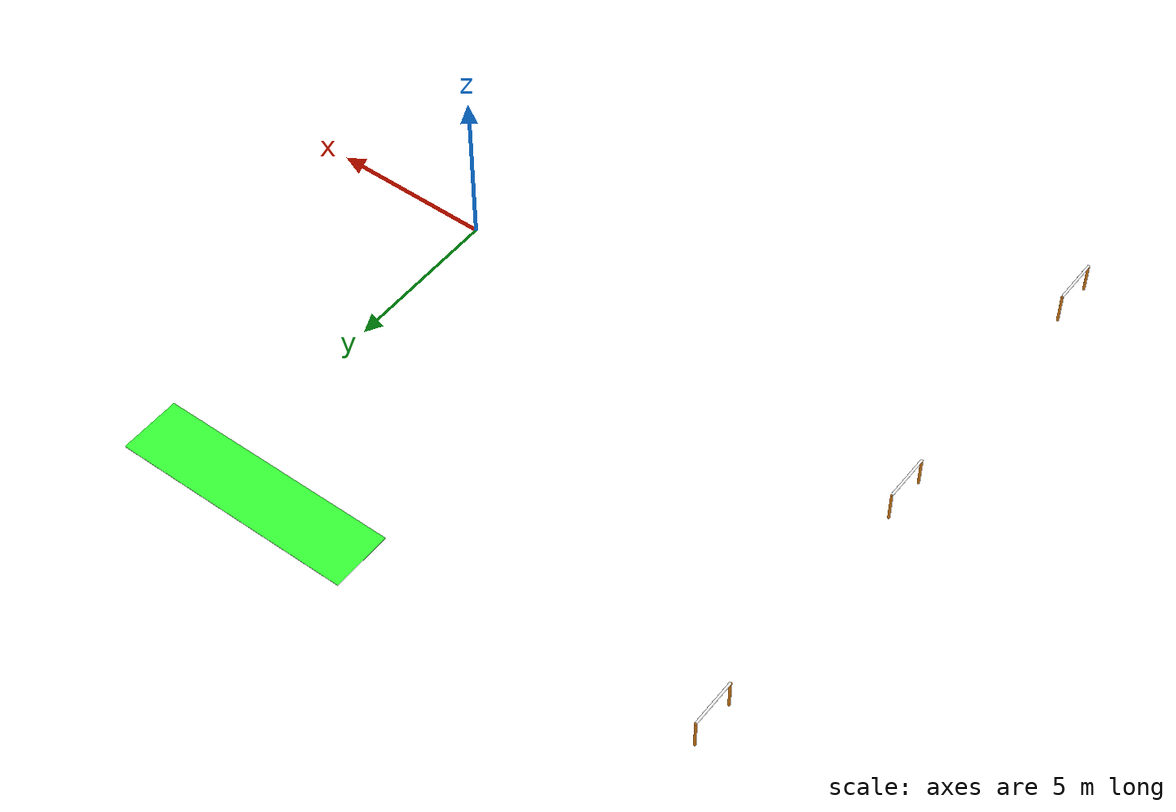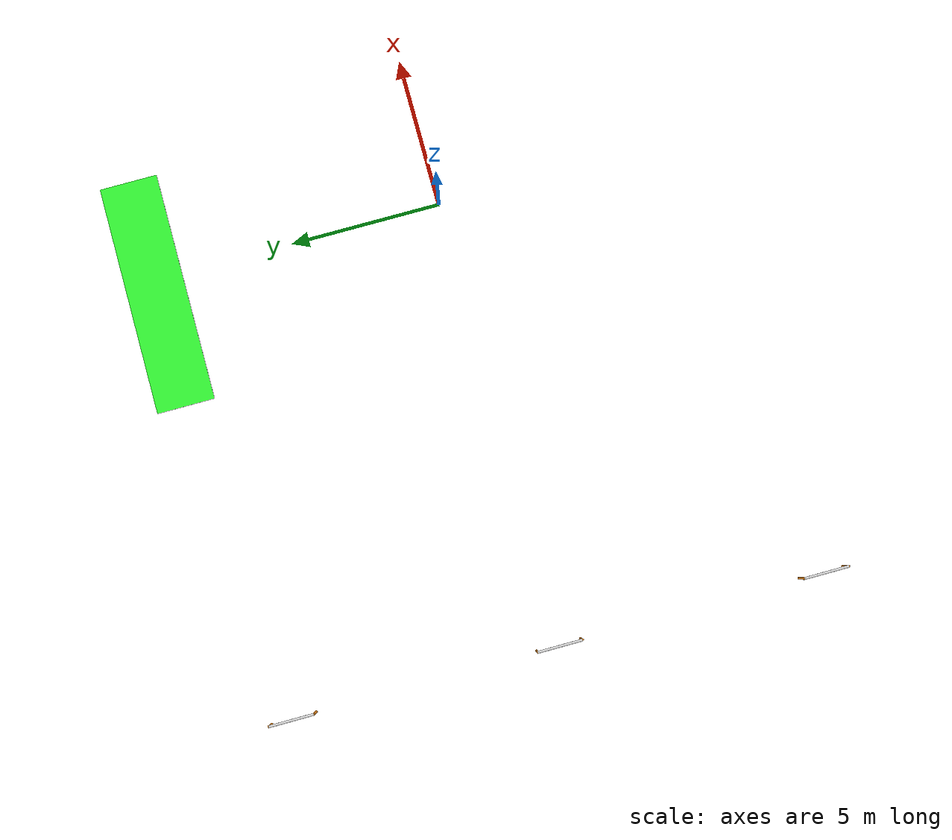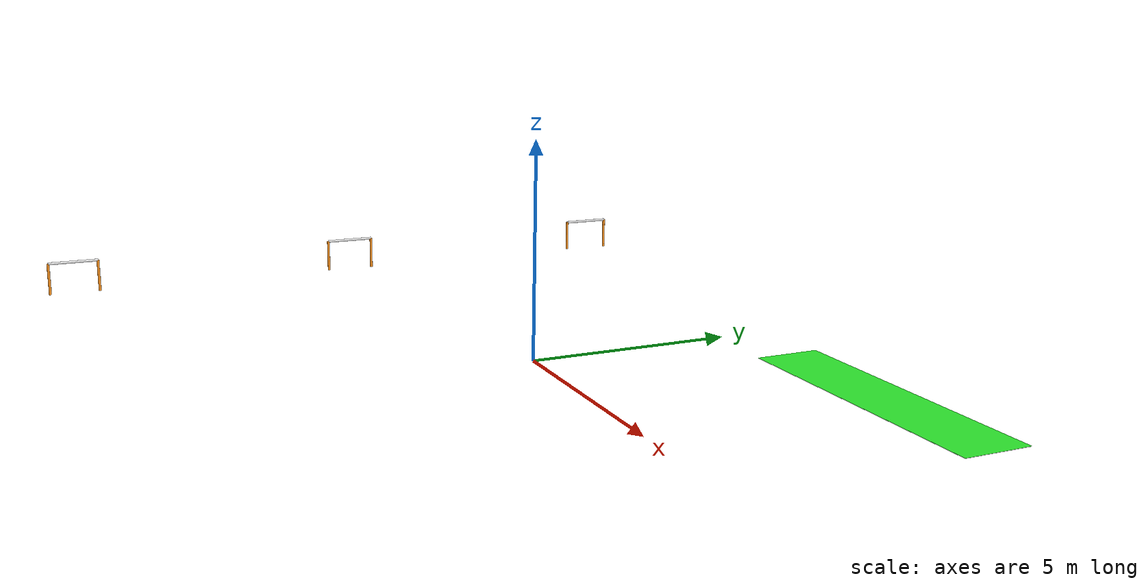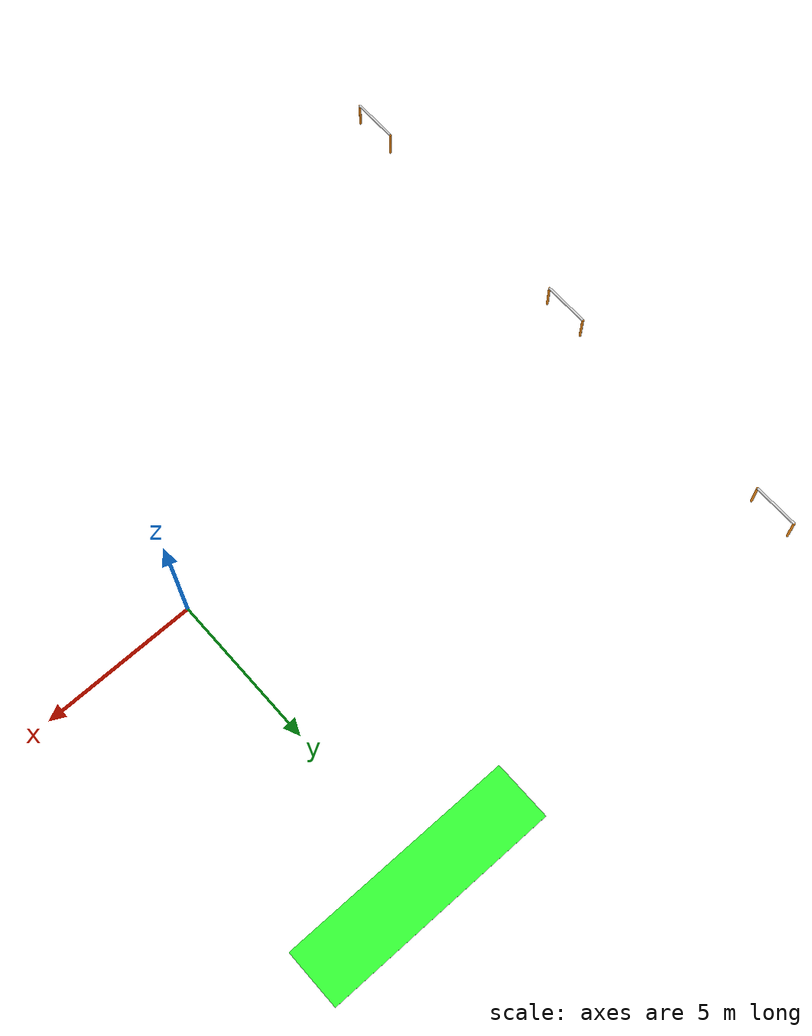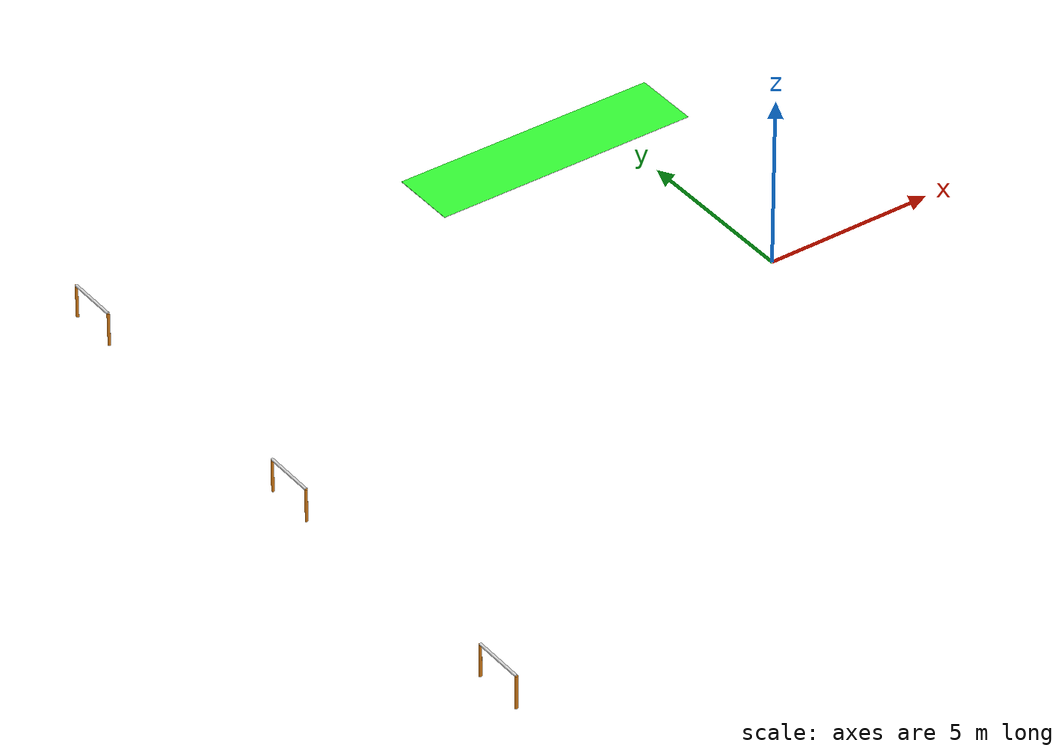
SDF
<sdf version="1.8">
 <world name="pool_world">
  <plugin filename="ignition-gazebo-physics-system" name="gz::sim::systems::Physics"/>
  <plugin filename="ignition-gazebo-user-commands-system" name="gz::sim::systems::UserCommands"/>
  <plugin filename="ignition-gazebo-scene-broadcaster-system" name="gz::sim::systems::SceneBroadcaster"/>
  <plugin filename="ignition-gazebo-sensors-system" name="gz::sim::systems::Sensors">
   <render_engine>ogre2</render_engine>
  </plugin>
  <gravity>0 0 -9.81</gravity>
  <magnetic_field>6e-6 2e-5 -4e-5</magnetic_field>
  <atmosphere type="adiabatic"/>
  <scene><ambient>0.4 0.4 0.45 1</ambient><background>0.85 0.9 1 1</background><shadows>true</shadows></scene>
  <physics name="dart" type="ignition-physics-dartsim">
   <max_step_size>0.001</max_step_size>
   <real_time_factor>1.0</real_time_factor>
   <real_time_update_rate>1000</real_time_update_rate>
  </physics>
  <include><uri>https://fuel.gazebosim.org/1.0/OpenRobotics/models/Sun</uri></include>
  <plugin filename="ignition-gazebo-buoyancy-system" name="ignition::gazebo::systems::Buoyancy">
   <uniform_fluid_density>1000</uniform_fluid_density>
  </plugin>
  <include>
   <uri>model://q_gate</uri>
   <name>q_gate0</name>
   <pose>-15 -9 -0.2 0 0 1.5708</pose>
   <static>1</static>
  </include>
  <include>
   <uri>model://q_gate</uri>
   <name>q_gate1</name>
   <pose>-15 0 -0.2 0 0 1.5708</pose>
   <static>1</static>
  </include>
  <include>
   <uri>model://q_gate</uri>
   <name>q_gate2</name>
   <pose>-15 9 -0.2 0 0 1.5708</pose>
   <static>1</static>
  </include>
  <include><uri>model://green_mat</uri><pose>0 10 -2.2 0 -0 0</pose><static>1</static></include>
 </world>
</sdf>

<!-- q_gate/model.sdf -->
<sdf version="1.7">

  <!-- Qualification Gate model (static) -->
  <model name="qualification_gate">
    <static>1</static>

    <!-- Top bar (lies along X, centered at z=0 surface) -->
    <link name="top_bar">
      <pose>0 0 0 0 0 0</pose>
      <inertial>
        <mass>1.0</mass>
        <inertia>
          <ixx>0.01</ixx><ixy>0</ixy><ixz>0</ixz>
          <iyy>0.01</iyy><iyz>0</iyz><izz>0.01</izz>
        </inertia>
      </inertial>

      <visual name="top_bar_visual">
        <pose>0 0 0 0 1.5708 0</pose>
        <geometry>
          <cylinder>
            <radius>0.04</radius>
            <length>1.5</length> <!-- length along X -->
          </cylinder>
        </geometry>
        <material>
          <script>
            <uri>file://media/materials/scripts/gazebo.material</uri>
            <name>Gazebo/White</name>
          </script>
          <ambient>1 1 1 1</ambient>
          <diffuse>1 1 1 1</diffuse>
        </material>
        <cast_shadows>1</cast_shadows>
      </visual>

      <collision name="top_bar_collision">
        <pose>0 0 0 0 1.5708 0</pose>
        <geometry>
          <cylinder>
            <radius>0.04</radius>
            <length>1.5</length> <!-- length along X -->
          </cylinder>
        </geometry>
        <surface>
          <contact>
            <collide_without_contact>0</collide_without_contact>
          </contact>
        </surface>
      </collision>
    </link>

    <!-- Left vertical post (port) -->
    <link name="post_left">
      <!-- center of cylinder is half the length below surface; cylinder length = 1.0 m -->
      <pose>-0.75 0 -0.5 0 0 0</pose>
      <inertial>
        <mass>0.5</mass>
        <inertia>
          <ixx>0.01</ixx><ixy>0</ixy><ixz>0</ixz>
          <iyy>0.01</iyy><iyz>0</iyz><izz>0.01</izz>
        </inertia>
      </inertial>

      <visual name="post_left_visual">
        <pose>0 0 0 0 0 0</pose>
        <geometry>
          <cylinder>
            <radius>0.04</radius>
            <length>1.0</length> <!-- depth (downwards) -->
          </cylinder>
        </geometry>
        <material>
          <script>
            <uri>file://media/materials/scripts/gazebo.material</uri>
            <name>Gazebo/Orange</name>
          </script>
          <ambient>1 0.55 0 1</ambient>
          <diffuse>1 0.55 0 1</diffuse>
        </material>
        <cast_shadows>1</cast_shadows>
      </visual>

      <collision name="post_left_collision">
        <pose>0 0 0 0 0 0</pose>
        <geometry>
          <cylinder>
            <radius>0.04</radius>
            <length>1.0</length>
          </cylinder>
        </geometry>
        <surface>
          <contact>
            <collide_without_contact>0</collide_without_contact>
          </contact>
        </surface>
      </collision>
    </link>

    <!-- Right vertical post (starboard) -->
    <link name="post_right">
      <pose>0.75 0 -0.5 0 0 0</pose>
      <inertial>
        <mass>0.5</mass>
        <inertia>
          <ixx>0.01</ixx><ixy>0</ixy><ixz>0</ixz>
          <iyy>0.01</iyy><iyz>0</iyz><izz>0.01</izz>
        </inertia>
      </inertial>

      <visual name="post_right_visual">
        <pose>0 0 0 0 0 0</pose>
        <geometry>
          <cylinder>
            <radius>0.04</radius>
            <length>1.0</length>
          </cylinder>
        </geometry>
        <material>
          <script>
            <uri>file://media/materials/scripts/gazebo.material</uri>
            <name>Gazebo/Orange</name>
          </script>
          <ambient>1 0.55 0 1</ambient>
          <diffuse>1 0.55 0 1</diffuse>
        </material>
        <cast_shadows>1</cast_shadows>
      </visual>

      <collision name="post_right_collision">
        <pose>0 0 0 0 0 0</pose>
        <geometry>
          <cylinder>
            <radius>0.04</radius>
            <length>1.0</length>
          </cylinder>
        </geometry>
        <surface>
          <contact>
            <collide_without_contact>0</collide_without_contact>
          </contact>
        </surface>
      </collision>
    </link>

    <!-- Fixed joints to hold posts to top_bar -->
    <joint name="top_left_fixed" type="fixed">
      <parent>top_bar</parent>
      <child>post_left</child>
      <pose>-0.75 0 0 0 0 0</pose>
    </joint>

    <joint name="top_right_fixed" type="fixed">
      <parent>top_bar</parent>
      <child>post_right</child>
      <pose>0.75 0 0 0 0 0</pose>
    </joint>

  </model>

</sdf>

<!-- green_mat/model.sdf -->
<sdf version='1.7'>
  <model name='green_mat'>
    <link name='link_1'>
      <inertial>
        <mass>1</mass>
        <inertia>
          <ixx>0.166667</ixx>
          <ixy>0</ixy>
          <ixz>0</ixz>
          <iyy>0.166667</iyy>
          <iyz>0</iyz>
          <izz>0.166667</izz>
        </inertia>
        <pose>0 0 0 0 -0 0</pose>
      </inertial>
      <pose>0 0 0 0 -0 0</pose>
      <gravity>1</gravity>
      <self_collide>0</self_collide>
      <kinematic>0</kinematic>
      <enable_wind>0</enable_wind>
      <visual name='visual'>
        <pose>0 0 0 0 -0 0</pose>
        <geometry>
          <box>
            <size>8 2 0.01</size>
          </box>
        </geometry>
        <material>
          <lighting>1</lighting>
          <script>
            <uri>file://media/materials/scripts/gazebo.material</uri>
            <name>Gazebo/Grey</name>
          </script>
          <shader type='pixel'>
            <normal_map>__default__</normal_map>
          </shader>
          <ambient>0.1 0.5 0.1 1</ambient>
          <diffuse>0.2 1 0.2 1</diffuse>
          <specular>0.01 0.01 0.01 1</specular>
          <emissive>0 0 0 1</emissive>
        </material>
        <transparency>0</transparency>
        <cast_shadows>1</cast_shadows>
      </visual>
      <collision name='collision'>
        <laser_retro>0</laser_retro>
        <max_contacts>10</max_contacts>
        <pose>0 0 0 0 -0 0</pose>
        <geometry>
          <box>
            <size>8 2 0.01</size>
          </box>
        </geometry>
        <surface>
          <friction>
            <ode>
              <mu>1</mu>
              <mu2>1</mu2>
              <fdir1>0 0 0</fdir1>
              <slip1>0</slip1>
              <slip2>0</slip2>
            </ode>
            <torsional>
              <coefficient>1</coefficient>
              <patch_radius>0</patch_radius>
              <surface_radius>0</surface_radius>
              <use_patch_radius>1</use_patch_radius>
              <ode>
                <slip>0</slip>
              </ode>
            </torsional>
          </friction>
          <bounce>
            <restitution_coefficient>0</restitution_coefficient>
            <threshold>1e+06</threshold>
          </bounce>
          <contact>
            <collide_without_contact>0</collide_without_contact>
            <collide_without_contact_bitmask>1</collide_without_contact_bitmask>
            <collide_bitmask>1</collide_bitmask>
            <ode>
              <soft_cfm>0</soft_cfm>
              <soft_erp>0.2</soft_erp>
              <kp>1e+13</kp>
              <kd>1</kd>
              <max_vel>0.01</max_vel>
              <min_depth>0</min_depth>
            </ode>
            <bullet>
              <split_impulse>1</split_impulse>
              <split_impulse_penetration_threshold>-0.01</split_impulse_penetration_threshold>
              <soft_cfm>0</soft_cfm>
              <soft_erp>0.2</soft_erp>
              <kp>1e+13</kp>
              <kd>1</kd>
            </bullet>
          </contact>
        </surface>
      </collision>
    </link>
    <static>1</static>
    <allow_auto_disable>1</allow_auto_disable>
  </model>
</sdf>
